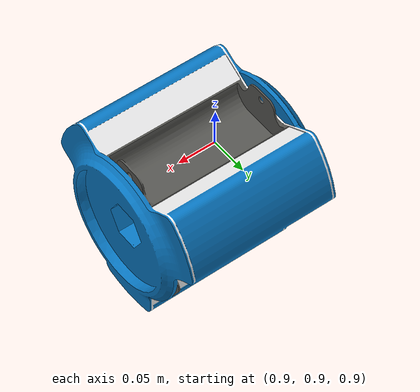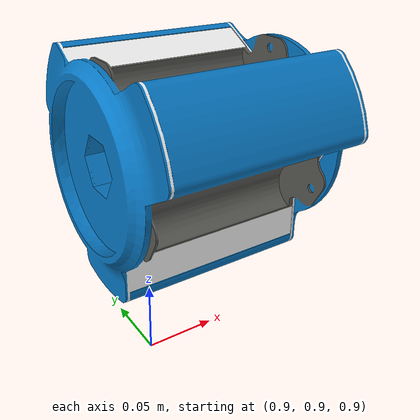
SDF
<?xml version="1.0"?>
<sdf version="1.7">
  <model name="b">
    <link name='bodyLink'>
      <pose>1 1 1 0 0 0</pose>
      <inertial>
        <mass>1.8</mass>
        <inertia>
          <ixx>2.501</ixx>
          <ixy>0</ixy>
          <ixz>0</ixz>
          <iyy>2.501</iyy>
          <iyz>0</iyz>
          <izz>5</izz>
        </inertia>
      </inertial>
      <collision name='collision'>
        <geometry>
          <mesh>
            <scale> 0.01 0.01 0.01</scale>
            <uri>model://rm2_body/meshes/body_collision.stl</uri>
          </mesh>
        </geometry>
      </collision>
      <visual name='visual'>
        <geometry>
          <mesh>
            <uri>model://rm2_body/meshes/b_simple.dae</uri>
          </mesh>
        </geometry>
      </visual>
    </link>
  </model>
</sdf>
